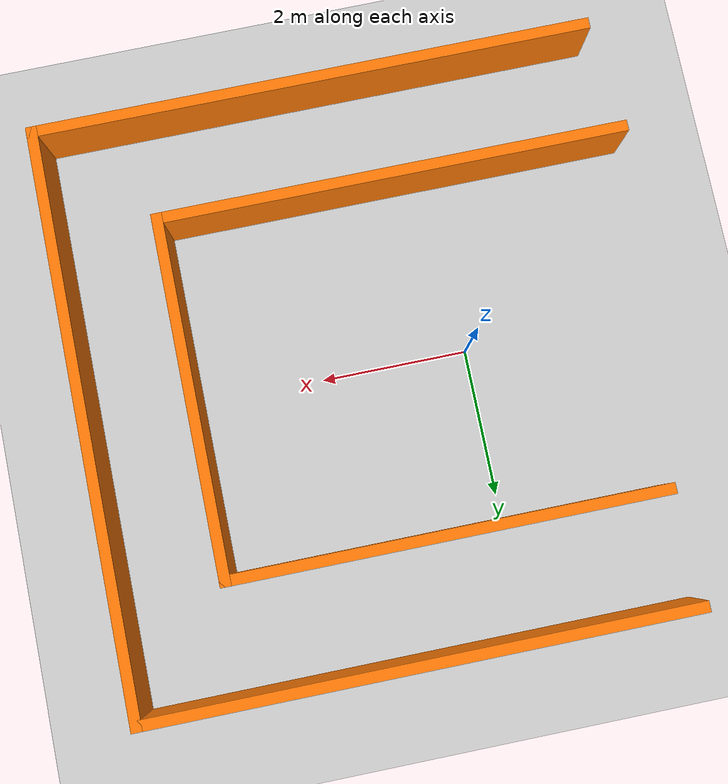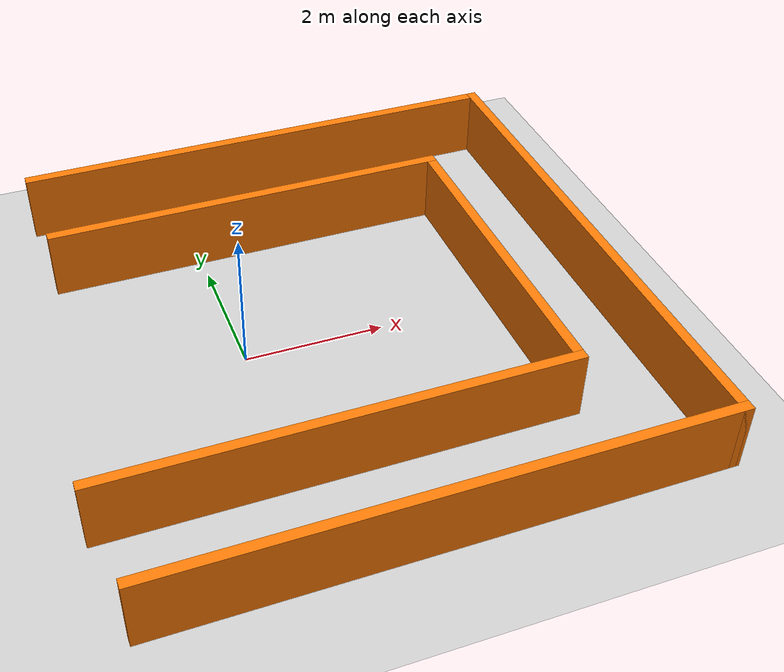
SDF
<sdf version="1.6">
 <world name="default">
  <model name="ground_plane">
   <static>1</static>
   <link name="link">
    <collision name="collision">
     <geometry><plane><normal>0 0 1</normal><size>100 100</size></plane></geometry>
     <surface><friction><ode><mu>100</mu><mu2>50</mu2></ode></friction></surface>
    </collision>
    <visual name="visual">
     <cast_shadows>0</cast_shadows>
     <geometry><plane><normal>0 0 1</normal><size>100 100</size></plane></geometry>
     <material>
      <script><uri>file://media/materials/scripts/gazebo.material</uri><name>Gazebo/Grey</name></script>
     </material>
    </visual>
   </link>
  </model>
  <light name="sun" type="directional">
   <pose>0 0 10 0 -0 0</pose>
   <diffuse>0.8 0.8 0.8 1</diffuse>
   <specular>0.1 0.1 0.1 1</specular>
   <attenuation>
    <range>1000</range>
    <constant>0.9</constant>
    <linear>0.01</linear>
    <quadratic>0.001</quadratic>
   </attenuation>
   <direction>-0.5 0.5 -1</direction>
  </light>
  <gravity>0 0 -9.8</gravity>
  <magnetic_field>6e-06 2.3e-05 -4.2e-05</magnetic_field>
  <atmosphere type="adiabatic"/>
  <physics name="default_physics" default="0" type="ode">
   <max_step_size>0.001</max_step_size>
   <real_time_factor>1</real_time_factor>
   <real_time_update_rate>1000</real_time_update_rate>
  </physics>
  <scene><ambient>0.4 0.4 0.4 1</ambient><background>0.7 0.7 0.7 1</background><shadows>1</shadows></scene>
  <spherical_coordinates>
   <surface_model>EARTH_WGS84</surface_model>
   <latitude_deg>0</latitude_deg>
   <longitude_deg>0</longitude_deg>
   <elevation>0</elevation>
   <heading_deg>0</heading_deg>
  </spherical_coordinates>
  <model name="simple_maze">
   <pose>1.27725 -0.002989 0 0 -0 0</pose>
   <link name="Wall_2">
    <collision name="Wall_2_Collision">
     <geometry><box><size>7.75 0.15 1</size></box></geometry>
     <pose>0 0 0.5 0 -0 0</pose>
    </collision>
    <visual name="Wall_2_Visual">
     <pose>0 0 0.5 0 -0 0</pose>
     <geometry><box><size>7.75 0.15 1</size></box></geometry>
     <material>
      <script><uri>file://media/materials/scripts/gazebo.material</uri><name>Gazebo/Grey</name></script>
      <ambient>0.996078 0.47451 0.0196078 1</ambient>
     </material>
    </visual>
    <pose>0.091 -3.9525 0 0 -0 0</pose>
   </link>
   <link name="Wall_3">
    <collision name="Wall_3_Collision">
     <geometry><box><size>8.055 0.15 1</size></box></geometry>
     <pose>0 0 0.5 0 -0 0</pose>
    </collision>
    <visual name="Wall_3_Visual">
     <pose>0 0 0.5 0 -0 0</pose>
     <geometry><box><size>8.055 0.15 1</size></box></geometry>
     <material>
      <script><uri>file://media/materials/scripts/gazebo.material</uri><name>Gazebo/Grey</name></script>
      <ambient>0.996078 0.47451 0.0196078 1</ambient>
     </material>
    </visual>
    <pose>3.891 0 0 0 -0 1.5708</pose>
   </link>
   <link name="Wall_4">
    <collision name="Wall_4_Collision">
     <geometry><box><size>7.5 0.15 1</size></box></geometry>
     <pose>0 0 0.5 0 -0 0</pose>
    </collision>
    <visual name="Wall_4_Visual">
     <pose>0 0 0.5 0 -0 0</pose>
     <geometry><box><size>7.5 0.15 1</size></box></geometry>
     <material>
      <script><uri>file://media/materials/scripts/gazebo.material</uri><name>Gazebo/Grey</name></script>
      <ambient>0.996078 0.47451 0.0196078 1</ambient>
     </material>
    </visual>
    <pose>0.216 3.9525 0 0 -0 3.14159</pose>
   </link>
   <link name="Wall_6">
    <collision name="Wall_6_Collision">
     <geometry><box><size>6 0.15 1</size></box></geometry>
     <pose>0 0 0.5 0 -0 0</pose>
    </collision>
    <visual name="Wall_6_Visual">
     <pose>0 0 0.5 0 -0 0</pose>
     <geometry><box><size>6 0.15 1</size></box></geometry>
     <material>
      <script><uri>file://media/materials/scripts/gazebo.material</uri><name>Gazebo/Grey</name></script>
      <ambient>0.996078 0.47451 0.0196078 1</ambient>
     </material>
    </visual>
    <pose>-0.466 2.4065 0 0 -0 0</pose>
   </link>
   <link name="Wall_7">
    <collision name="Wall_7_Collision">
     <geometry><box><size>5 0.15 1</size></box></geometry>
     <pose>0 0 0.5 0 -0 0</pose>
    </collision>
    <visual name="Wall_7_Visual">
     <pose>0 0 0.5 0 -0 0</pose>
     <geometry><box><size>5 0.15 1</size></box></geometry>
     <material>
      <script><uri>file://media/materials/scripts/gazebo.material</uri><name>Gazebo/Grey</name></script>
      <ambient>0.996078 0.47451 0.0196078 1</ambient>
     </material>
    </visual>
    <pose>2.459 -0.0185 0 0 0 -1.5708</pose>
   </link>
   <link name="Wall_8">
    <collision name="Wall_8_Collision">
     <geometry><box><size>6.5 0.15 1</size></box></geometry>
     <pose>0 0 0.5 0 -0 0</pose>
    </collision>
    <visual name="Wall_8_Visual">
     <pose>0 0 0.5 0 -0 0</pose>
     <geometry><box><size>6.5 0.15 1</size></box></geometry>
     <material>
      <script><uri>file://media/materials/scripts/gazebo.material</uri><name>Gazebo/Grey</name></script>
      <ambient>0.996078 0.47451 0.0196078 1</ambient>
     </material>
    </visual>
    <pose>-0.716 -2.4435 0 0 -0 3.14159</pose>
   </link>
   <static>1</static>
  </model>
 </world>
</sdf>
